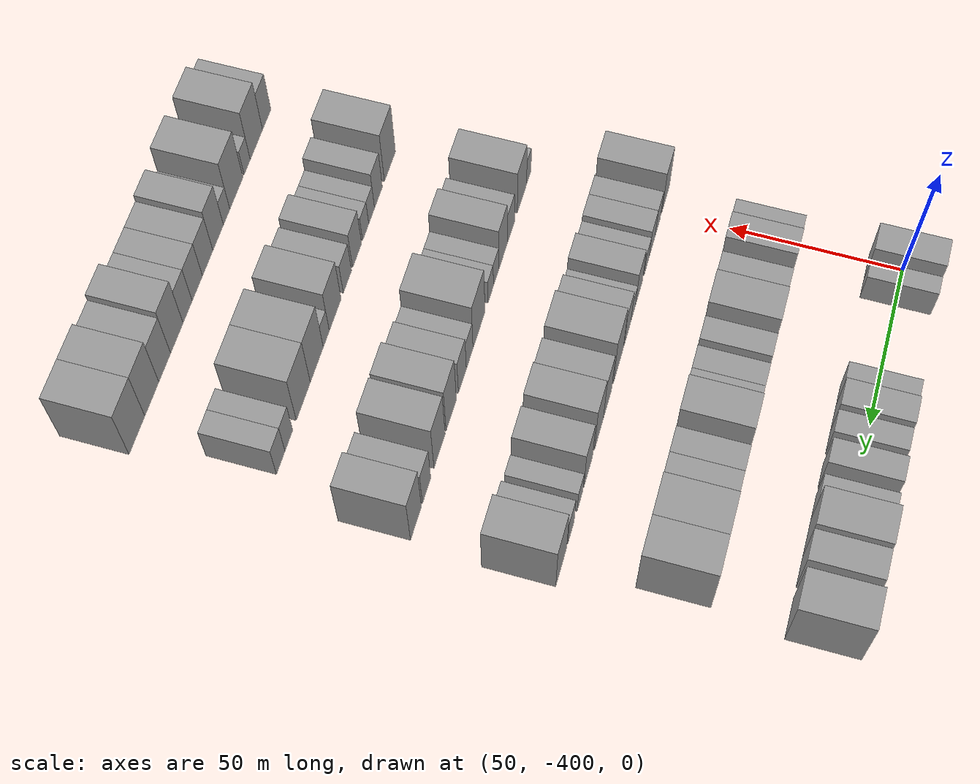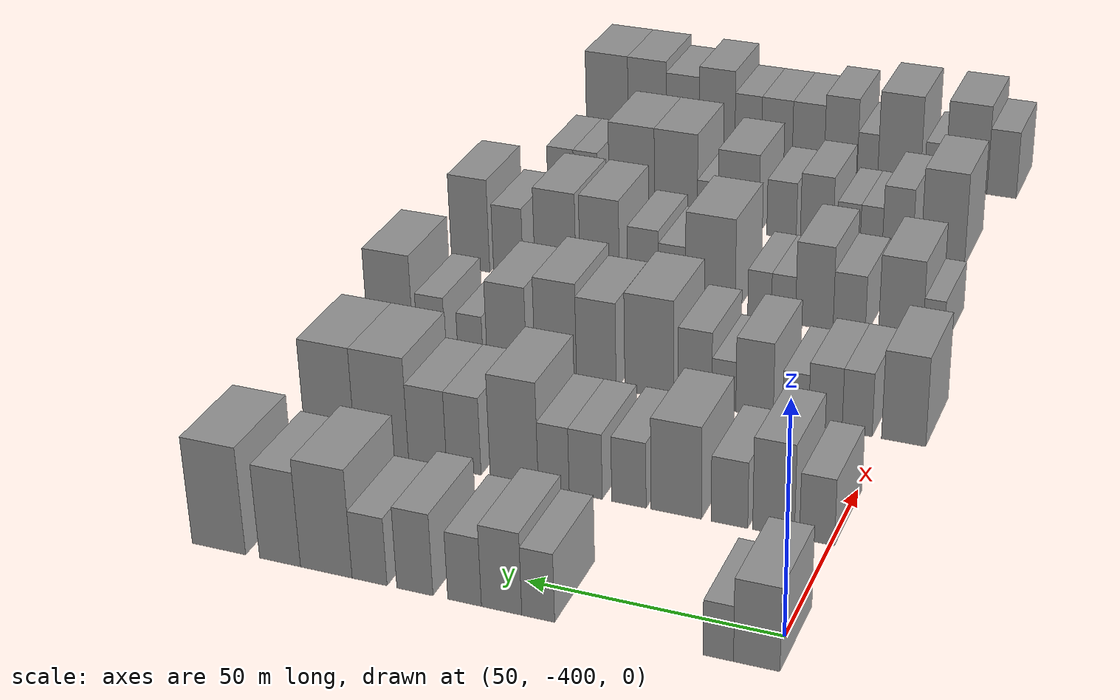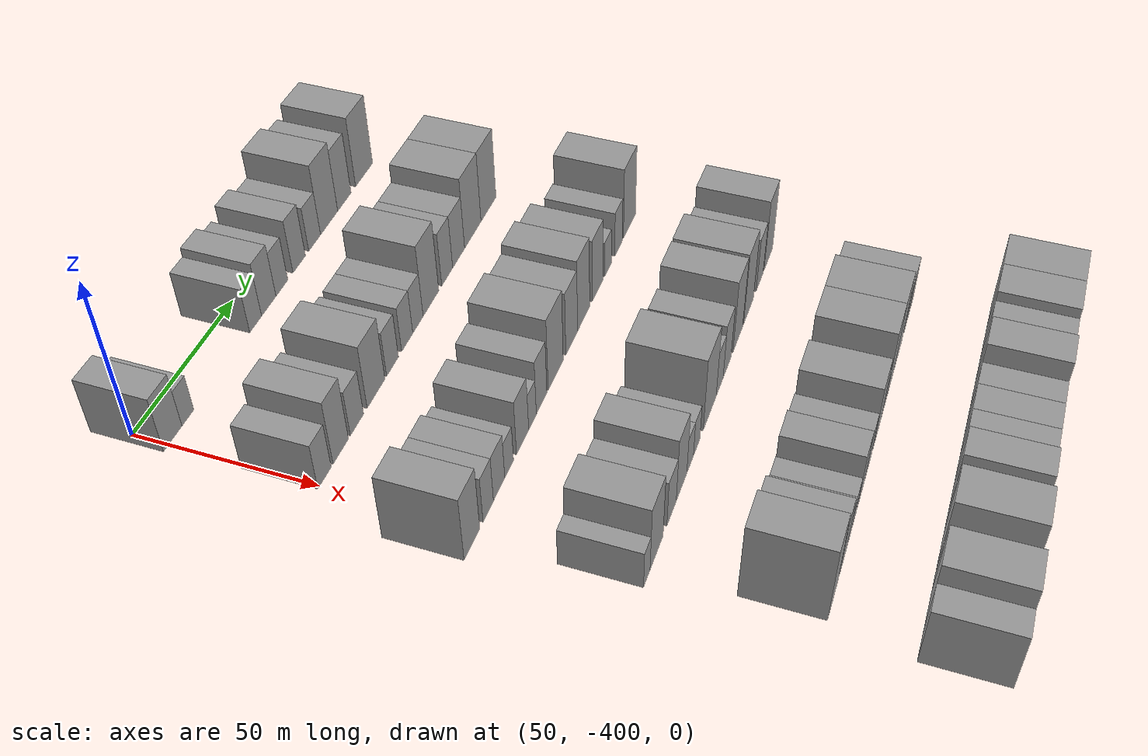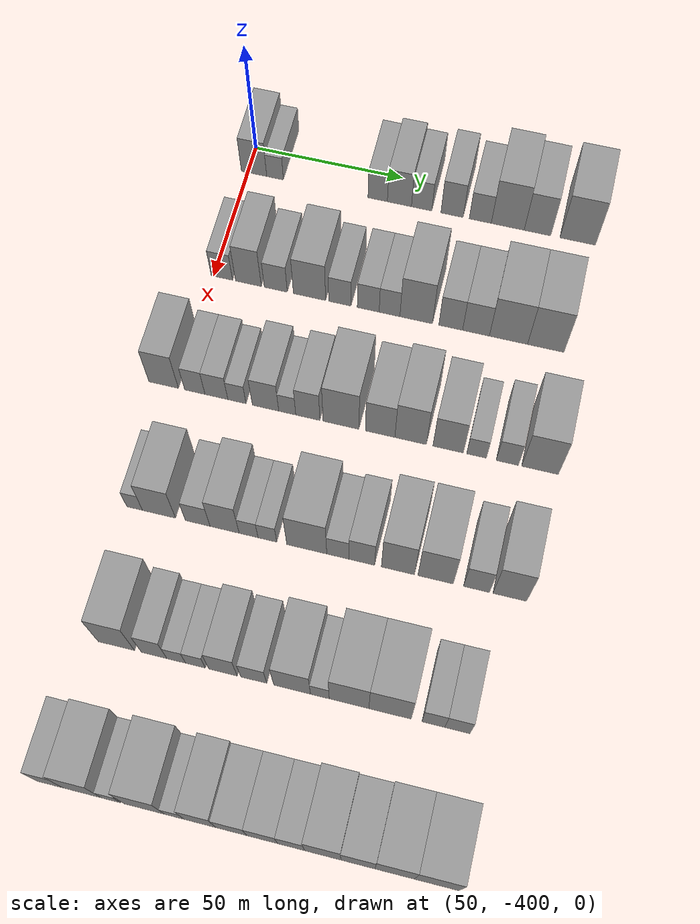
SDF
<sdf version="1.6">
 <world name="default">
  <model name="building_26">
   <static>1</static>
   <pose>50.0000 -397.8932 0 0.000000 0.000000 0.000000</pose>
   <link name="link">
    <pose>0 0 9.00 0 0 0</pose>
    <collision name="collision"><geometry><box><size>20.0000 8.5868 18.0000</size></box></geometry></collision>
    <visual name="visual">
     <cast_shadows>0</cast_shadows>
     <geometry><box><size>20.0000 8.5868 18.0000</size></box></geometry>
     <material>
      <script>
       <uri>model://grey_wall/materials/scripts</uri>
       <uri>model://grey_wall/materials/textures</uri>
       <name>vrc/grey_wall</name>
      </script>
     </material>
    </visual>
   </link>
  </model>
  <model name="building_27">
   <static>1</static>
   <pose>50.0000 -390.7681 0 0.000000 0.000000 0.000000</pose>
   <link name="link">
    <pose>0 0 6.00 0 0 0</pose>
    <collision name="collision"><geometry><box><size>20.0000 5.6634 12.0000</size></box></geometry></collision>
    <visual name="visual">
     <cast_shadows>0</cast_shadows>
     <geometry><box><size>20.0000 5.6634 12.0000</size></box></geometry>
     <material>
      <script>
       <uri>model://grey_wall/materials/scripts</uri>
       <uri>model://grey_wall/materials/textures</uri>
       <name>vrc/grey_wall</name>
      </script>
     </material>
    </visual>
   </link>
  </model>
  <model name="building_28">
   <static>1</static>
   <pose>50.0000 -356.2573 0 0.000000 0.000000 0.000000</pose>
   <link name="link">
    <pose>0 0 7.50 0 0 0</pose>
    <collision name="collision"><geometry><box><size>20.0000 6.4528 15.0000</size></box></geometry></collision>
    <visual name="visual">
     <cast_shadows>0</cast_shadows>
     <geometry><box><size>20.0000 6.4528 15.0000</size></box></geometry>
     <material>
      <script>
       <uri>model://grey_wall/materials/scripts</uri>
       <uri>model://grey_wall/materials/textures</uri>
       <name>vrc/grey_wall</name>
      </script>
     </material>
    </visual>
   </link>
  </model>
  <model name="building_29">
   <static>1</static>
   <pose>50.0000 -349.0196 0 0.000000 0.000000 0.000000</pose>
   <link name="link">
    <pose>0 0 9.00 0 0 0</pose>
    <collision name="collision"><geometry><box><size>20.0000 8.0226 18.0000</size></box></geometry></collision>
    <visual name="visual">
     <cast_shadows>0</cast_shadows>
     <geometry><box><size>20.0000 8.0226 18.0000</size></box></geometry>
     <material>
      <script>
       <uri>model://grey_wall/materials/scripts</uri>
       <uri>model://grey_wall/materials/textures</uri>
       <name>vrc/grey_wall</name>
      </script>
     </material>
    </visual>
   </link>
  </model>
  <model name="building_30">
   <static>1</static>
   <pose>50.0000 -341.6316 0 0.000000 0.000000 0.000000</pose>
   <link name="link">
    <pose>0 0 7.50 0 0 0</pose>
    <collision name="collision"><geometry><box><size>20.0000 6.7535 15.0000</size></box></geometry></collision>
    <visual name="visual">
     <cast_shadows>0</cast_shadows>
     <geometry><box><size>20.0000 6.7535 15.0000</size></box></geometry>
     <material>
      <script>
       <uri>model://grey_wall/materials/scripts</uri>
       <uri>model://grey_wall/materials/textures</uri>
       <name>vrc/grey_wall</name>
      </script>
     </material>
    </visual>
   </link>
  </model>
  <model name="building_31">
   <static>1</static>
   <pose>50.0000 -331.5749 0 0.000000 0.000000 0.000000</pose>
   <link name="link">
    <pose>0 0 9.00 0 0 0</pose>
    <collision name="collision"><geometry><box><size>20.0000 7.3599 18.0000</size></box></geometry></collision>
    <visual name="visual">
     <cast_shadows>0</cast_shadows>
     <geometry><box><size>20.0000 7.3599 18.0000</size></box></geometry>
     <material>
      <script>
       <uri>model://grey_wall/materials/scripts</uri>
       <uri>model://grey_wall/materials/textures</uri>
       <name>vrc/grey_wall</name>
      </script>
     </material>
    </visual>
   </link>
  </model>
  <model name="building_32">
   <static>1</static>
   <pose>50.0000 -322.2869 0 0.000000 0.000000 0.000000</pose>
   <link name="link">
    <pose>0 0 7.50 0 0 0</pose>
    <collision name="collision"><geometry><box><size>20.0000 7.2160 15.0000</size></box></geometry></collision>
    <visual name="visual">
     <cast_shadows>0</cast_shadows>
     <geometry><box><size>20.0000 7.2160 15.0000</size></box></geometry>
     <material>
      <script>
       <uri>model://grey_wall/materials/scripts</uri>
       <uri>model://grey_wall/materials/textures</uri>
       <name>vrc/grey_wall</name>
      </script>
     </material>
    </visual>
   </link>
  </model>
  <model name="building_33">
   <static>1</static>
   <pose>50.0000 -313.2828 0 0.000000 0.000000 0.000000</pose>
   <link name="link">
    <pose>0 0 12.00 0 0 0</pose>
    <collision name="collision"><geometry><box><size>20.0000 10.7922 24.0000</size></box></geometry></collision>
    <visual name="visual">
     <cast_shadows>0</cast_shadows>
     <geometry><box><size>20.0000 10.7922 24.0000</size></box></geometry>
     <material>
      <script>
       <uri>model://grey_wall/materials/scripts</uri>
       <uri>model://grey_wall/materials/textures</uri>
       <name>vrc/grey_wall</name>
      </script>
     </material>
    </visual>
   </link>
  </model>
  <model name="building_34">
   <static>1</static>
   <pose>50.0000 -303.5560 0 0.000000 0.000000 0.000000</pose>
   <link name="link">
    <pose>0 0 10.50 0 0 0</pose>
    <collision name="collision"><geometry><box><size>20.0000 8.6615 21.0000</size></box></geometry></collision>
    <visual name="visual">
     <cast_shadows>0</cast_shadows>
     <geometry><box><size>20.0000 8.6615 21.0000</size></box></geometry>
     <material>
      <script>
       <uri>model://grey_wall/materials/scripts</uri>
       <uri>model://grey_wall/materials/textures</uri>
       <name>vrc/grey_wall</name>
      </script>
     </material>
    </visual>
   </link>
  </model>
  <model name="building_35">
   <static>1</static>
   <pose>50.0000 -290.4824 0 0.000000 0.000000 0.000000</pose>
   <link name="link">
    <pose>0 0 12.00 0 0 0</pose>
    <collision name="collision"><geometry><box><size>20.0000 11.4858 24.0000</size></box></geometry></collision>
    <visual name="visual">
     <cast_shadows>0</cast_shadows>
     <geometry><box><size>20.0000 11.4858 24.0000</size></box></geometry>
     <material>
      <script>
       <uri>model://grey_wall/materials/scripts</uri>
       <uri>model://grey_wall/materials/textures</uri>
       <name>vrc/grey_wall</name>
      </script>
     </material>
    </visual>
   </link>
  </model>
  <model name="building_151">
   <static>1</static>
   <pose>90.0000 -397.3552 0 0.000000 0.000000 0.000000</pose>
   <link name="link">
    <pose>0 0 7.50 0 0 0</pose>
    <collision name="collision"><geometry><box><size>20.0000 6.9954 15.0000</size></box></geometry></collision>
    <visual name="visual">
     <cast_shadows>0</cast_shadows>
     <geometry><box><size>20.0000 6.9954 15.0000</size></box></geometry>
     <material>
      <script>
       <uri>model://grey_wall/materials/scripts</uri>
       <uri>model://grey_wall/materials/textures</uri>
       <name>vrc/grey_wall</name>
      </script>
     </material>
    </visual>
   </link>
  </model>
  <model name="building_152">
   <static>1</static>
   <pose>90.0000 -388.6516 0 0.000000 0.000000 0.000000</pose>
   <link name="link">
    <pose>0 0 10.50 0 0 0</pose>
    <collision name="collision"><geometry><box><size>20.0000 8.4116 21.0000</size></box></geometry></collision>
    <visual name="visual">
     <cast_shadows>0</cast_shadows>
     <geometry><box><size>20.0000 8.4116 21.0000</size></box></geometry>
     <material>
      <script>
       <uri>model://grey_wall/materials/scripts</uri>
       <uri>model://grey_wall/materials/textures</uri>
       <name>vrc/grey_wall</name>
      </script>
     </material>
    </visual>
   </link>
  </model>
  <model name="building_153">
   <static>1</static>
   <pose>90.0000 -379.7166 0 0.000000 0.000000 0.000000</pose>
   <link name="link">
    <pose>0 0 7.50 0 0 0</pose>
    <collision name="collision"><geometry><box><size>20.0000 7.4585 15.0000</size></box></geometry></collision>
    <visual name="visual">
     <cast_shadows>0</cast_shadows>
     <geometry><box><size>20.0000 7.4585 15.0000</size></box></geometry>
     <material>
      <script>
       <uri>model://grey_wall/materials/scripts</uri>
       <uri>model://grey_wall/materials/textures</uri>
       <name>vrc/grey_wall</name>
      </script>
     </material>
    </visual>
   </link>
  </model>
  <model name="building_154">
   <static>1</static>
   <pose>90.0000 -368.7658 0 0.000000 0.000000 0.000000</pose>
   <link name="link">
    <pose>0 0 10.50 0 0 0</pose>
    <collision name="collision"><geometry><box><size>20.0000 10.4432 21.0000</size></box></geometry></collision>
    <visual name="visual">
     <cast_shadows>0</cast_shadows>
     <geometry><box><size>20.0000 10.4432 21.0000</size></box></geometry>
     <material>
      <script>
       <uri>model://grey_wall/materials/scripts</uri>
       <uri>model://grey_wall/materials/textures</uri>
       <name>vrc/grey_wall</name>
      </script>
     </material>
    </visual>
   </link>
  </model>
  <model name="building_155">
   <static>1</static>
   <pose>90.0000 -358.9441 0 0.000000 0.000000 0.000000</pose>
   <link name="link">
    <pose>0 0 7.50 0 0 0</pose>
    <collision name="collision"><geometry><box><size>20.0000 7.2001 15.0000</size></box></geometry></collision>
    <visual name="visual">
     <cast_shadows>0</cast_shadows>
     <geometry><box><size>20.0000 7.2001 15.0000</size></box></geometry>
     <material>
      <script>
       <uri>model://grey_wall/materials/scripts</uri>
       <uri>model://grey_wall/materials/textures</uri>
       <name>vrc/grey_wall</name>
      </script>
     </material>
    </visual>
   </link>
  </model>
  <model name="building_156">
   <static>1</static>
   <pose>90.0000 -349.8378 0 0.000000 0.000000 0.000000</pose>
   <link name="link">
    <pose>0 0 7.50 0 0 0</pose>
    <collision name="collision"><geometry><box><size>20.0000 7.0124 15.0000</size></box></geometry></collision>
    <visual name="visual">
     <cast_shadows>0</cast_shadows>
     <geometry><box><size>20.0000 7.0124 15.0000</size></box></geometry>
     <material>
      <script>
       <uri>model://grey_wall/materials/scripts</uri>
       <uri>model://grey_wall/materials/textures</uri>
       <name>vrc/grey_wall</name>
      </script>
     </material>
    </visual>
   </link>
  </model>
  <model name="building_157">
   <static>1</static>
   <pose>90.0000 -343.0130 0 0.000000 0.000000 0.000000</pose>
   <link name="link">
    <pose>0 0 7.50 0 0 0</pose>
    <collision name="collision"><geometry><box><size>20.0000 6.6372 15.0000</size></box></geometry></collision>
    <visual name="visual">
     <cast_shadows>0</cast_shadows>
     <geometry><box><size>20.0000 6.6372 15.0000</size></box></geometry>
     <material>
      <script>
       <uri>model://grey_wall/materials/scripts</uri>
       <uri>model://grey_wall/materials/textures</uri>
       <name>vrc/grey_wall</name>
      </script>
     </material>
    </visual>
   </link>
  </model>
  <model name="building_158">
   <static>1</static>
   <pose>90.0000 -334.4944 0 0.000000 0.000000 0.000000</pose>
   <link name="link">
    <pose>0 0 12.00 0 0 0</pose>
    <collision name="collision"><geometry><box><size>20.0000 10.4001 24.0000</size></box></geometry></collision>
    <visual name="visual">
     <cast_shadows>0</cast_shadows>
     <geometry><box><size>20.0000 10.4001 24.0000</size></box></geometry>
     <material>
      <script>
       <uri>model://grey_wall/materials/scripts</uri>
       <uri>model://grey_wall/materials/textures</uri>
       <name>vrc/grey_wall</name>
      </script>
     </material>
    </visual>
   </link>
  </model>
  <model name="building_159">
   <static>1</static>
   <pose>90.0000 -323.5174 0 0.000000 0.000000 0.000000</pose>
   <link name="link">
    <pose>0 0 9.00 0 0 0</pose>
    <collision name="collision"><geometry><box><size>20.0000 7.5537 18.0000</size></box></geometry></collision>
    <visual name="visual">
     <cast_shadows>0</cast_shadows>
     <geometry><box><size>20.0000 7.5537 18.0000</size></box></geometry>
     <material>
      <script>
       <uri>model://grey_wall/materials/scripts</uri>
       <uri>model://grey_wall/materials/textures</uri>
       <name>vrc/grey_wall</name>
      </script>
     </material>
    </visual>
   </link>
  </model>
  <model name="building_160">
   <static>1</static>
   <pose>90.0000 -315.5094 0 0.000000 0.000000 0.000000</pose>
   <link name="link">
    <pose>0 0 9.00 0 0 0</pose>
    <collision name="collision"><geometry><box><size>20.0000 8.4623 18.0000</size></box></geometry></collision>
    <visual name="visual">
     <cast_shadows>0</cast_shadows>
     <geometry><box><size>20.0000 8.4623 18.0000</size></box></geometry>
     <material>
      <script>
       <uri>model://grey_wall/materials/scripts</uri>
       <uri>model://grey_wall/materials/textures</uri>
       <name>vrc/grey_wall</name>
      </script>
     </material>
    </visual>
   </link>
  </model>
  <model name="building_161">
   <static>1</static>
   <pose>90.0000 -305.2793 0 0.000000 0.000000 0.000000</pose>
   <link name="link">
    <pose>0 0 12.00 0 0 0</pose>
    <collision name="collision"><geometry><box><size>20.0000 11.9980 24.0000</size></box></geometry></collision>
    <visual name="visual">
     <cast_shadows>0</cast_shadows>
     <geometry><box><size>20.0000 11.9980 24.0000</size></box></geometry>
     <material>
      <script>
       <uri>model://grey_wall/materials/scripts</uri>
       <uri>model://grey_wall/materials/textures</uri>
       <name>vrc/grey_wall</name>
      </script>
     </material>
    </visual>
   </link>
  </model>
  <model name="building_162">
   <static>1</static>
   <pose>90.0000 -293.5775 0 0.000000 0.000000 0.000000</pose>
   <link name="link">
    <pose>0 0 12.00 0 0 0</pose>
    <collision name="collision"><geometry><box><size>20.0000 11.4056 24.0000</size></box></geometry></collision>
    <visual name="visual">
     <cast_shadows>0</cast_shadows>
     <geometry><box><size>20.0000 11.4056 24.0000</size></box></geometry>
     <material>
      <script>
       <uri>model://grey_wall/materials/scripts</uri>
       <uri>model://grey_wall/materials/textures</uri>
       <name>vrc/grey_wall</name>
      </script>
     </material>
    </visual>
   </link>
  </model>
  <model name="building_283">
   <static>1</static>
   <pose>130.0000 -404.2687 0 0.000000 0.000000 0.000000</pose>
   <link name="link">
    <pose>0 0 10.50 0 0 0</pose>
    <collision name="collision"><geometry><box><size>20.0000 9.3541 21.0000</size></box></geometry></collision>
    <visual name="visual">
     <cast_shadows>0</cast_shadows>
     <geometry><box><size>20.0000 9.3541 21.0000</size></box></geometry>
     <material>
      <script>
       <uri>model://grey_wall/materials/scripts</uri>
       <uri>model://grey_wall/materials/textures</uri>
       <name>vrc/grey_wall</name>
      </script>
     </material>
    </visual>
   </link>
  </model>
  <model name="building_284">
   <static>1</static>
   <pose>130.0000 -394.3772 0 0.000000 0.000000 0.000000</pose>
   <link name="link">
    <pose>0 0 7.50 0 0 0</pose>
    <collision name="collision"><geometry><box><size>20.0000 6.4288 15.0000</size></box></geometry></collision>
    <visual name="visual">
     <cast_shadows>0</cast_shadows>
     <geometry><box><size>20.0000 6.4288 15.0000</size></box></geometry>
     <material>
      <script>
       <uri>model://grey_wall/materials/scripts</uri>
       <uri>model://grey_wall/materials/textures</uri>
       <name>vrc/grey_wall</name>
      </script>
     </material>
    </visual>
   </link>
  </model>
  <model name="building_285">
   <static>1</static>
   <pose>130.0000 -387.5535 0 0.000000 0.000000 0.000000</pose>
   <link name="link">
    <pose>0 0 7.50 0 0 0</pose>
    <collision name="collision"><geometry><box><size>20.0000 7.2187 15.0000</size></box></geometry></collision>
    <visual name="visual">
     <cast_shadows>0</cast_shadows>
     <geometry><box><size>20.0000 7.2187 15.0000</size></box></geometry>
     <material>
      <script>
       <uri>model://grey_wall/materials/scripts</uri>
       <uri>model://grey_wall/materials/textures</uri>
       <name>vrc/grey_wall</name>
      </script>
     </material>
    </visual>
   </link>
  </model>
  <model name="building_286">
   <static>1</static>
   <pose>130.0000 -381.0975 0 0.000000 0.000000 0.000000</pose>
   <link name="link">
    <pose>0 0 6.00 0 0 0</pose>
    <collision name="collision"><geometry><box><size>20.0000 5.6932 12.0000</size></box></geometry></collision>
    <visual name="visual">
     <cast_shadows>0</cast_shadows>
     <geometry><box><size>20.0000 5.6932 12.0000</size></box></geometry>
     <material>
      <script>
       <uri>model://grey_wall/materials/scripts</uri>
       <uri>model://grey_wall/materials/textures</uri>
       <name>vrc/grey_wall</name>
      </script>
     </material>
    </visual>
   </link>
  </model>
  <model name="building_287">
   <static>1</static>
   <pose>130.0000 -372.1316 0 0.000000 0.000000 0.000000</pose>
   <link name="link">
    <pose>0 0 9.00 0 0 0</pose>
    <collision name="collision"><geometry><box><size>20.0000 8.2386 18.0000</size></box></geometry></collision>
    <visual name="visual">
     <cast_shadows>0</cast_shadows>
     <geometry><box><size>20.0000 8.2386 18.0000</size></box></geometry>
     <material>
      <script>
       <uri>model://grey_wall/materials/scripts</uri>
       <uri>model://grey_wall/materials/textures</uri>
       <name>vrc/grey_wall</name>
      </script>
     </material>
    </visual>
   </link>
  </model>
  <model name="building_288">
   <static>1</static>
   <pose>130.0000 -365.3599 0 0.000000 0.000000 0.000000</pose>
   <link name="link">
    <pose>0 0 6.00 0 0 0</pose>
    <collision name="collision"><geometry><box><size>20.0000 5.3048 12.0000</size></box></geometry></collision>
    <visual name="visual">
     <cast_shadows>0</cast_shadows>
     <geometry><box><size>20.0000 5.3048 12.0000</size></box></geometry>
     <material>
      <script>
       <uri>model://grey_wall/materials/scripts</uri>
       <uri>model://grey_wall/materials/textures</uri>
       <name>vrc/grey_wall</name>
      </script>
     </material>
    </visual>
   </link>
  </model>
  <model name="building_289">
   <static>1</static>
   <pose>130.0000 -358.9534 0 0.000000 0.000000 0.000000</pose>
   <link name="link">
    <pose>0 0 9.00 0 0 0</pose>
    <collision name="collision"><geometry><box><size>20.0000 7.5081 18.0000</size></box></geometry></collision>
    <visual name="visual">
     <cast_shadows>0</cast_shadows>
     <geometry><box><size>20.0000 7.5081 18.0000</size></box></geometry>
     <material>
      <script>
       <uri>model://grey_wall/materials/scripts</uri>
       <uri>model://grey_wall/materials/textures</uri>
       <name>vrc/grey_wall</name>
      </script>
     </material>
    </visual>
   </link>
  </model>
  <model name="building_290">
   <static>1</static>
   <pose>130.0000 -348.6659 0 0.000000 0.000000 0.000000</pose>
   <link name="link">
    <pose>0 0 12.00 0 0 0</pose>
    <collision name="collision"><geometry><box><size>20.0000 11.0669 24.0000</size></box></geometry></collision>
    <visual name="visual">
     <cast_shadows>0</cast_shadows>
     <geometry><box><size>20.0000 11.0669 24.0000</size></box></geometry>
     <material>
      <script>
       <uri>model://grey_wall/materials/scripts</uri>
       <uri>model://grey_wall/materials/textures</uri>
       <name>vrc/grey_wall</name>
      </script>
     </material>
    </visual>
   </link>
  </model>
  <model name="building_291">
   <static>1</static>
   <pose>130.0000 -336.5953 0 0.000000 0.000000 0.000000</pose>
   <link name="link">
    <pose>0 0 10.50 0 0 0</pose>
    <collision name="collision"><geometry><box><size>20.0000 9.0742 21.0000</size></box></geometry></collision>
    <visual name="visual">
     <cast_shadows>0</cast_shadows>
     <geometry><box><size>20.0000 9.0742 21.0000</size></box></geometry>
     <material>
      <script>
       <uri>model://grey_wall/materials/scripts</uri>
       <uri>model://grey_wall/materials/textures</uri>
       <name>vrc/grey_wall</name>
      </script>
     </material>
    </visual>
   </link>
  </model>
  <model name="building_292">
   <static>1</static>
   <pose>130.0000 -327.2388 0 0.000000 0.000000 0.000000</pose>
   <link name="link">
    <pose>0 0 12.00 0 0 0</pose>
    <collision name="collision"><geometry><box><size>20.0000 9.6388 24.0000</size></box></geometry></collision>
    <visual name="visual">
     <cast_shadows>0</cast_shadows>
     <geometry><box><size>20.0000 9.6388 24.0000</size></box></geometry>
     <material>
      <script>
       <uri>model://grey_wall/materials/scripts</uri>
       <uri>model://grey_wall/materials/textures</uri>
       <name>vrc/grey_wall</name>
      </script>
     </material>
    </visual>
   </link>
  </model>
  <model name="building_293">
   <static>1</static>
   <pose>130.0000 -315.7831 0 0.000000 0.000000 0.000000</pose>
   <link name="link">
    <pose>0 0 10.50 0 0 0</pose>
    <collision name="collision"><geometry><box><size>20.0000 9.2727 21.0000</size></box></geometry></collision>
    <visual name="visual">
     <cast_shadows>0</cast_shadows>
     <geometry><box><size>20.0000 9.2727 21.0000</size></box></geometry>
     <material>
      <script>
       <uri>model://grey_wall/materials/scripts</uri>
       <uri>model://grey_wall/materials/textures</uri>
       <name>vrc/grey_wall</name>
      </script>
     </material>
    </visual>
   </link>
  </model>
  <model name="building_294">
   <static>1</static>
   <pose>130.0000 -307.1684 0 0.000000 0.000000 0.000000</pose>
   <link name="link">
    <pose>0 0 6.00 0 0 0</pose>
    <collision name="collision"><geometry><box><size>20.0000 5.9567 12.0000</size></box></geometry></collision>
    <visual name="visual">
     <cast_shadows>0</cast_shadows>
     <geometry><box><size>20.0000 5.9567 12.0000</size></box></geometry>
     <material>
      <script>
       <uri>model://grey_wall/materials/scripts</uri>
       <uri>model://grey_wall/materials/textures</uri>
       <name>vrc/grey_wall</name>
      </script>
     </material>
    </visual>
   </link>
  </model>
  <model name="building_295">
   <static>1</static>
   <pose>130.0000 -297.8545 0 0.000000 0.000000 0.000000</pose>
   <link name="link">
    <pose>0 0 7.50 0 0 0</pose>
    <collision name="collision"><geometry><box><size>20.0000 6.6711 15.0000</size></box></geometry></collision>
    <visual name="visual">
     <cast_shadows>0</cast_shadows>
     <geometry><box><size>20.0000 6.6711 15.0000</size></box></geometry>
     <material>
      <script>
       <uri>model://grey_wall/materials/scripts</uri>
       <uri>model://grey_wall/materials/textures</uri>
       <name>vrc/grey_wall</name>
      </script>
     </material>
    </visual>
   </link>
  </model>
  <model name="building_296">
   <static>1</static>
   <pose>130.0000 -288.0106 0 0.000000 0.000000 0.000000</pose>
   <link name="link">
    <pose>0 0 12.00 0 0 0</pose>
    <collision name="collision"><geometry><box><size>20.0000 11.0166 24.0000</size></box></geometry></collision>
    <visual name="visual">
     <cast_shadows>0</cast_shadows>
     <geometry><box><size>20.0000 11.0166 24.0000</size></box></geometry>
     <material>
      <script>
       <uri>model://grey_wall/materials/scripts</uri>
       <uri>model://grey_wall/materials/textures</uri>
       <name>vrc/grey_wall</name>
      </script>
     </material>
    </visual>
   </link>
  </model>
  <model name="building_424">
   <static>1</static>
   <pose>170.0000 -400.8075 0 0.000000 0.000000 0.000000</pose>
   <link name="link">
    <pose>0 0 6.00 0 0 0</pose>
    <collision name="collision"><geometry><box><size>20.0000 4.8228 12.0000</size></box></geometry></collision>
    <visual name="visual">
     <cast_shadows>0</cast_shadows>
     <geometry><box><size>20.0000 4.8228 12.0000</size></box></geometry>
     <material>
      <script>
       <uri>model://grey_wall/materials/scripts</uri>
       <uri>model://grey_wall/materials/textures</uri>
       <name>vrc/grey_wall</name>
      </script>
     </material>
    </visual>
   </link>
  </model>
  <model name="building_425">
   <static>1</static>
   <pose>170.0000 -393.3749 0 0.000000 0.000000 0.000000</pose>
   <link name="link">
    <pose>0 0 10.50 0 0 0</pose>
    <collision name="collision"><geometry><box><size>20.0000 10.0425 21.0000</size></box></geometry></collision>
    <visual name="visual">
     <cast_shadows>0</cast_shadows>
     <geometry><box><size>20.0000 10.0425 21.0000</size></box></geometry>
     <material>
      <script>
       <uri>model://grey_wall/materials/scripts</uri>
       <uri>model://grey_wall/materials/textures</uri>
       <name>vrc/grey_wall</name>
      </script>
     </material>
    </visual>
   </link>
  </model>
  <model name="building_426">
   <static>1</static>
   <pose>170.0000 -381.6269 0 0.000000 0.000000 0.000000</pose>
   <link name="link">
    <pose>0 0 7.50 0 0 0</pose>
    <collision name="collision"><geometry><box><size>20.0000 7.4536 15.0000</size></box></geometry></collision>
    <visual name="visual">
     <cast_shadows>0</cast_shadows>
     <geometry><box><size>20.0000 7.4536 15.0000</size></box></geometry>
     <material>
      <script>
       <uri>model://grey_wall/materials/scripts</uri>
       <uri>model://grey_wall/materials/textures</uri>
       <name>vrc/grey_wall</name>
      </script>
     </material>
    </visual>
   </link>
  </model>
  <model name="building_427">
   <static>1</static>
   <pose>170.0000 -373.5046 0 0.000000 0.000000 0.000000</pose>
   <link name="link">
    <pose>0 0 10.50 0 0 0</pose>
    <collision name="collision"><geometry><box><size>20.0000 8.7910 21.0000</size></box></geometry></collision>
    <visual name="visual">
     <cast_shadows>0</cast_shadows>
     <geometry><box><size>20.0000 8.7910 21.0000</size></box></geometry>
     <material>
      <script>
       <uri>model://grey_wall/materials/scripts</uri>
       <uri>model://grey_wall/materials/textures</uri>
       <name>vrc/grey_wall</name>
      </script>
     </material>
    </visual>
   </link>
  </model>
  <model name="building_428">
   <static>1</static>
   <pose>170.0000 -366.2763 0 0.000000 0.000000 0.000000</pose>
   <link name="link">
    <pose>0 0 6.00 0 0 0</pose>
    <collision name="collision"><geometry><box><size>20.0000 5.6657 12.0000</size></box></geometry></collision>
    <visual name="visual">
     <cast_shadows>0</cast_shadows>
     <geometry><box><size>20.0000 5.6657 12.0000</size></box></geometry>
     <material>
      <script>
       <uri>model://grey_wall/materials/scripts</uri>
       <uri>model://grey_wall/materials/textures</uri>
       <name>vrc/grey_wall</name>
      </script>
     </material>
    </visual>
   </link>
  </model>
  <model name="building_429">
   <static>1</static>
   <pose>170.0000 -360.6447 0 0.000000 0.000000 0.000000</pose>
   <link name="link">
    <pose>0 0 6.00 0 0 0</pose>
    <collision name="collision"><geometry><box><size>20.0000 5.5974 12.0000</size></box></geometry></collision>
    <visual name="visual">
     <cast_shadows>0</cast_shadows>
     <geometry><box><size>20.0000 5.5974 12.0000</size></box></geometry>
     <material>
      <script>
       <uri>model://grey_wall/materials/scripts</uri>
       <uri>model://grey_wall/materials/textures</uri>
       <name>vrc/grey_wall</name>
      </script>
     </material>
    </visual>
   </link>
  </model>
  <model name="building_430">
   <static>1</static>
   <pose>170.0000 -348.9025 0 0.000000 0.000000 0.000000</pose>
   <link name="link">
    <pose>0 0 12.00 0 0 0</pose>
    <collision name="collision"><geometry><box><size>20.0000 11.8871 24.0000</size></box></geometry></collision>
    <visual name="visual">
     <cast_shadows>0</cast_shadows>
     <geometry><box><size>20.0000 11.8871 24.0000</size></box></geometry>
     <material>
      <script>
       <uri>model://grey_wall/materials/scripts</uri>
       <uri>model://grey_wall/materials/textures</uri>
       <name>vrc/grey_wall</name>
      </script>
     </material>
    </visual>
   </link>
  </model>
  <model name="building_431">
   <static>1</static>
   <pose>170.0000 -339.6867 0 0.000000 0.000000 0.000000</pose>
   <link name="link">
    <pose>0 0 7.50 0 0 0</pose>
    <collision name="collision"><geometry><box><size>20.0000 6.5444 15.0000</size></box></geometry></collision>
    <visual name="visual">
     <cast_shadows>0</cast_shadows>
     <geometry><box><size>20.0000 6.5444 15.0000</size></box></geometry>
     <material>
      <script>
       <uri>model://grey_wall/materials/scripts</uri>
       <uri>model://grey_wall/materials/textures</uri>
       <name>vrc/grey_wall</name>
      </script>
     </material>
    </visual>
   </link>
  </model>
  <model name="building_432">
   <static>1</static>
   <pose>170.0000 -332.6117 0 0.000000 0.000000 0.000000</pose>
   <link name="link">
    <pose>0 0 9.00 0 0 0</pose>
    <collision name="collision"><geometry><box><size>20.0000 7.6057 18.0000</size></box></geometry></collision>
    <visual name="visual">
     <cast_shadows>0</cast_shadows>
     <geometry><box><size>20.0000 7.6057 18.0000</size></box></geometry>
     <material>
      <script>
       <uri>model://grey_wall/materials/scripts</uri>
       <uri>model://grey_wall/materials/textures</uri>
       <name>vrc/grey_wall</name>
      </script>
     </material>
    </visual>
   </link>
  </model>
  <model name="building_433">
   <static>1</static>
   <pose>170.0000 -321.9472 0 0.000000 0.000000 0.000000</pose>
   <link name="link">
    <pose>0 0 12.00 0 0 0</pose>
    <collision name="collision"><geometry><box><size>20.0000 9.7232 24.0000</size></box></geometry></collision>
    <visual name="visual">
     <cast_shadows>0</cast_shadows>
     <geometry><box><size>20.0000 9.7232 24.0000</size></box></geometry>
     <material>
      <script>
       <uri>model://grey_wall/materials/scripts</uri>
       <uri>model://grey_wall/materials/textures</uri>
       <name>vrc/grey_wall</name>
      </script>
     </material>
    </visual>
   </link>
  </model>
  <model name="building_434">
   <static>1</static>
   <pose>170.0000 -310.9219 0 0.000000 0.000000 0.000000</pose>
   <link name="link">
    <pose>0 0 12.00 0 0 0</pose>
    <collision name="collision"><geometry><box><size>20.0000 10.3274 24.0000</size></box></geometry></collision>
    <visual name="visual">
     <cast_shadows>0</cast_shadows>
     <geometry><box><size>20.0000 10.3274 24.0000</size></box></geometry>
     <material>
      <script>
       <uri>model://grey_wall/materials/scripts</uri>
       <uri>model://grey_wall/materials/textures</uri>
       <name>vrc/grey_wall</name>
      </script>
     </material>
    </visual>
   </link>
  </model>
  <model name="building_435">
   <static>1</static>
   <pose>170.0000 -298.9947 0 0.000000 0.000000 0.000000</pose>
   <link name="link">
    <pose>0 0 9.00 0 0 0</pose>
    <collision name="collision"><geometry><box><size>20.0000 7.5271 18.0000</size></box></geometry></collision>
    <visual name="visual">
     <cast_shadows>0</cast_shadows>
     <geometry><box><size>20.0000 7.5271 18.0000</size></box></geometry>
     <material>
      <script>
       <uri>model://grey_wall/materials/scripts</uri>
       <uri>model://grey_wall/materials/textures</uri>
       <name>vrc/grey_wall</name>
      </script>
     </material>
    </visual>
   </link>
  </model>
  <model name="building_436">
   <static>1</static>
   <pose>170.0000 -289.3646 0 0.000000 0.000000 0.000000</pose>
   <link name="link">
    <pose>0 0 12.00 0 0 0</pose>
    <collision name="collision"><geometry><box><size>20.0000 9.7332 24.0000</size></box></geometry></collision>
    <visual name="visual">
     <cast_shadows>0</cast_shadows>
     <geometry><box><size>20.0000 9.7332 24.0000</size></box></geometry>
     <material>
      <script>
       <uri>model://grey_wall/materials/scripts</uri>
       <uri>model://grey_wall/materials/textures</uri>
       <name>vrc/grey_wall</name>
      </script>
     </material>
    </visual>
   </link>
  </model>
  <model name="building_566">
   <static>1</static>
   <pose>210.0000 -393.4894 0 0.000000 0.000000 0.000000</pose>
   <link name="link">
    <pose>0 0 12.00 0 0 0</pose>
    <collision name="collision"><geometry><box><size>20.0000 10.6416 24.0000</size></box></geometry></collision>
    <visual name="visual">
     <cast_shadows>0</cast_shadows>
     <geometry><box><size>20.0000 10.6416 24.0000</size></box></geometry>
     <material>
      <script>
       <uri>model://grey_wall/materials/scripts</uri>
       <uri>model://grey_wall/materials/textures</uri>
       <name>vrc/grey_wall</name>
      </script>
     </material>
    </visual>
   </link>
  </model>
  <model name="building_567">
   <static>1</static>
   <pose>210.0000 -382.4591 0 0.000000 0.000000 0.000000</pose>
   <link name="link">
    <pose>0 0 9.00 0 0 0</pose>
    <collision name="collision"><geometry><box><size>20.0000 7.4192 18.0000</size></box></geometry></collision>
    <visual name="visual">
     <cast_shadows>0</cast_shadows>
     <geometry><box><size>20.0000 7.4192 18.0000</size></box></geometry>
     <material>
      <script>
       <uri>model://grey_wall/materials/scripts</uri>
       <uri>model://grey_wall/materials/textures</uri>
       <name>vrc/grey_wall</name>
      </script>
     </material>
    </visual>
   </link>
  </model>
  <model name="building_568">
   <static>1</static>
   <pose>210.0000 -376.0173 0 0.000000 0.000000 0.000000</pose>
   <link name="link">
    <pose>0 0 6.00 0 0 0</pose>
    <collision name="collision"><geometry><box><size>20.0000 5.4644 12.0000</size></box></geometry></collision>
    <visual name="visual">
     <cast_shadows>0</cast_shadows>
     <geometry><box><size>20.0000 5.4644 12.0000</size></box></geometry>
     <material>
      <script>
       <uri>model://grey_wall/materials/scripts</uri>
       <uri>model://grey_wall/materials/textures</uri>
       <name>vrc/grey_wall</name>
      </script>
     </material>
    </visual>
   </link>
  </model>
  <model name="building_569">
   <static>1</static>
   <pose>210.0000 -370.4178 0 0.000000 0.000000 0.000000</pose>
   <link name="link">
    <pose>0 0 6.00 0 0 0</pose>
    <collision name="collision"><geometry><box><size>20.0000 5.7346 12.0000</size></box></geometry></collision>
    <visual name="visual">
     <cast_shadows>0</cast_shadows>
     <geometry><box><size>20.0000 5.7346 12.0000</size></box></geometry>
     <material>
      <script>
       <uri>model://grey_wall/materials/scripts</uri>
       <uri>model://grey_wall/materials/textures</uri>
       <name>vrc/grey_wall</name>
      </script>
     </material>
    </visual>
   </link>
  </model>
  <model name="building_570">
   <static>1</static>
   <pose>210.0000 -362.4594 0 0.000000 0.000000 0.000000</pose>
   <link name="link">
    <pose>0 0 9.00 0 0 0</pose>
    <collision name="collision"><geometry><box><size>20.0000 8.1821 18.0000</size></box></geometry></collision>
    <visual name="visual">
     <cast_shadows>0</cast_shadows>
     <geometry><box><size>20.0000 8.1821 18.0000</size></box></geometry>
     <material>
      <script>
       <uri>model://grey_wall/materials/scripts</uri>
       <uri>model://grey_wall/materials/textures</uri>
       <name>vrc/grey_wall</name>
      </script>
     </material>
    </visual>
   </link>
  </model>
  <model name="building_571">
   <static>1</static>
   <pose>210.0000 -353.6397 0 0.000000 0.000000 0.000000</pose>
   <link name="link">
    <pose>0 0 7.50 0 0 0</pose>
    <collision name="collision"><geometry><box><size>20.0000 7.4573 15.0000</size></box></geometry></collision>
    <visual name="visual">
     <cast_shadows>0</cast_shadows>
     <geometry><box><size>20.0000 7.4573 15.0000</size></box></geometry>
     <material>
      <script>
       <uri>model://grey_wall/materials/scripts</uri>
       <uri>model://grey_wall/materials/textures</uri>
       <name>vrc/grey_wall</name>
      </script>
     </material>
    </visual>
   </link>
  </model>
  <model name="building_572">
   <static>1</static>
   <pose>210.0000 -342.6761 0 0.000000 0.000000 0.000000</pose>
   <link name="link">
    <pose>0 0 10.50 0 0 0</pose>
    <collision name="collision"><geometry><box><size>20.0000 10.4700 21.0000</size></box></geometry></collision>
    <visual name="visual">
     <cast_shadows>0</cast_shadows>
     <geometry><box><size>20.0000 10.4700 21.0000</size></box></geometry>
     <material>
      <script>
       <uri>model://grey_wall/materials/scripts</uri>
       <uri>model://grey_wall/materials/textures</uri>
       <name>vrc/grey_wall</name>
      </script>
     </material>
    </visual>
   </link>
  </model>
  <model name="building_573">
   <static>1</static>
   <pose>210.0000 -334.7771 0 0.000000 0.000000 0.000000</pose>
   <link name="link">
    <pose>0 0 6.00 0 0 0</pose>
    <collision name="collision"><geometry><box><size>20.0000 5.3280 12.0000</size></box></geometry></collision>
    <visual name="visual">
     <cast_shadows>0</cast_shadows>
     <geometry><box><size>20.0000 5.3280 12.0000</size></box></geometry>
     <material>
      <script>
       <uri>model://grey_wall/materials/scripts</uri>
       <uri>model://grey_wall/materials/textures</uri>
       <name>vrc/grey_wall</name>
      </script>
     </material>
    </visual>
   </link>
  </model>
  <model name="building_574">
   <static>1</static>
   <pose>210.0000 -326.5229 0 0.000000 0.000000 0.000000</pose>
   <link name="link">
    <pose>0 0 12.00 0 0 0</pose>
    <collision name="collision"><geometry><box><size>20.0000 11.1803 24.0000</size></box></geometry></collision>
    <visual name="visual">
     <cast_shadows>0</cast_shadows>
     <geometry><box><size>20.0000 11.1803 24.0000</size></box></geometry>
     <material>
      <script>
       <uri>model://grey_wall/materials/scripts</uri>
       <uri>model://grey_wall/materials/textures</uri>
       <name>vrc/grey_wall</name>
      </script>
     </material>
    </visual>
   </link>
  </model>
  <model name="building_575">
   <static>1</static>
   <pose>210.0000 -314.9759 0 0.000000 0.000000 0.000000</pose>
   <link name="link">
    <pose>0 0 12.00 0 0 0</pose>
    <collision name="collision"><geometry><box><size>20.0000 11.9138 24.0000</size></box></geometry></collision>
    <visual name="visual">
     <cast_shadows>0</cast_shadows>
     <geometry><box><size>20.0000 11.9138 24.0000</size></box></geometry>
     <material>
      <script>
       <uri>model://grey_wall/materials/scripts</uri>
       <uri>model://grey_wall/materials/textures</uri>
       <name>vrc/grey_wall</name>
      </script>
     </material>
    </visual>
   </link>
  </model>
  <model name="building_576">
   <static>1</static>
   <pose>210.0000 -302.8187 0 0.000000 0.000000 0.000000</pose>
   <link name="link">
    <pose>0 0 7.50 0 0 0</pose>
    <collision name="collision"><geometry><box><size>20.0000 6.4006 15.0000</size></box></geometry></collision>
    <visual name="visual">
     <cast_shadows>0</cast_shadows>
     <geometry><box><size>20.0000 6.4006 15.0000</size></box></geometry>
     <material>
      <script>
       <uri>model://grey_wall/materials/scripts</uri>
       <uri>model://grey_wall/materials/textures</uri>
       <name>vrc/grey_wall</name>
      </script>
     </material>
    </visual>
   </link>
  </model>
  <model name="building_577">
   <static>1</static>
   <pose>210.0000 -296.1233 0 0.000000 0.000000 0.000000</pose>
   <link name="link">
    <pose>0 0 7.50 0 0 0</pose>
    <collision name="collision"><geometry><box><size>20.0000 6.9902 15.0000</size></box></geometry></collision>
    <visual name="visual">
     <cast_shadows>0</cast_shadows>
     <geometry><box><size>20.0000 6.9902 15.0000</size></box></geometry>
     <material>
      <script>
       <uri>model://grey_wall/materials/scripts</uri>
       <uri>model://grey_wall/materials/textures</uri>
       <name>vrc/grey_wall</name>
      </script>
     </material>
    </visual>
   </link>
  </model>
  <model name="building_703">
   <static>1</static>
   <pose>250.0000 -399.1938 0 0.000000 0.000000 0.000000</pose>
   <link name="link">
    <pose>0 0 9.00 0 0 0</pose>
    <collision name="collision"><geometry><box><size>20.0000 7.4627 18.0000</size></box></geometry></collision>
    <visual name="visual">
     <cast_shadows>0</cast_shadows>
     <geometry><box><size>20.0000 7.4627 18.0000</size></box></geometry>
     <material>
      <script>
       <uri>model://grey_wall/materials/scripts</uri>
       <uri>model://grey_wall/materials/textures</uri>
       <name>vrc/grey_wall</name>
      </script>
     </material>
    </visual>
   </link>
  </model>
  <model name="building_704">
   <static>1</static>
   <pose>250.0000 -390.0488 0 0.000000 0.000000 0.000000</pose>
   <link name="link">
    <pose>0 0 12.00 0 0 0</pose>
    <collision name="collision"><geometry><box><size>20.0000 10.8272 24.0000</size></box></geometry></collision>
    <visual name="visual">
     <cast_shadows>0</cast_shadows>
     <geometry><box><size>20.0000 10.8272 24.0000</size></box></geometry>
     <material>
      <script>
       <uri>model://grey_wall/materials/scripts</uri>
       <uri>model://grey_wall/materials/textures</uri>
       <name>vrc/grey_wall</name>
      </script>
     </material>
    </visual>
   </link>
  </model>
  <model name="building_705">
   <static>1</static>
   <pose>250.0000 -381.9650 0 0.000000 0.000000 0.000000</pose>
   <link name="link">
    <pose>0 0 6.00 0 0 0</pose>
    <collision name="collision"><geometry><box><size>20.0000 5.3404 12.0000</size></box></geometry></collision>
    <visual name="visual">
     <cast_shadows>0</cast_shadows>
     <geometry><box><size>20.0000 5.3404 12.0000</size></box></geometry>
     <material>
      <script>
       <uri>model://grey_wall/materials/scripts</uri>
       <uri>model://grey_wall/materials/textures</uri>
       <name>vrc/grey_wall</name>
      </script>
     </material>
    </visual>
   </link>
  </model>
  <model name="building_706">
   <static>1</static>
   <pose>250.0000 -372.6955 0 0.000000 0.000000 0.000000</pose>
   <link name="link">
    <pose>0 0 12.00 0 0 0</pose>
    <collision name="collision"><geometry><box><size>20.0000 11.1986 24.0000</size></box></geometry></collision>
    <visual name="visual">
     <cast_shadows>0</cast_shadows>
     <geometry><box><size>20.0000 11.1986 24.0000</size></box></geometry>
     <material>
      <script>
       <uri>model://grey_wall/materials/scripts</uri>
       <uri>model://grey_wall/materials/textures</uri>
       <name>vrc/grey_wall</name>
      </script>
     </material>
    </visual>
   </link>
  </model>
  <model name="building_707">
   <static>1</static>
   <pose>250.0000 -364.3867 0 0.000000 0.000000 0.000000</pose>
   <link name="link">
    <pose>0 0 6.00 0 0 0</pose>
    <collision name="collision"><geometry><box><size>20.0000 5.4190 12.0000</size></box></geometry></collision>
    <visual name="visual">
     <cast_shadows>0</cast_shadows>
     <geometry><box><size>20.0000 5.4190 12.0000</size></box></geometry>
     <material>
      <script>
       <uri>model://grey_wall/materials/scripts</uri>
       <uri>model://grey_wall/materials/textures</uri>
       <name>vrc/grey_wall</name>
      </script>
     </material>
    </visual>
   </link>
  </model>
  <model name="building_708">
   <static>1</static>
   <pose>250.0000 -357.2833 0 0.000000 0.000000 0.000000</pose>
   <link name="link">
    <pose>0 0 10.50 0 0 0</pose>
    <collision name="collision"><geometry><box><size>20.0000 8.7877 21.0000</size></box></geometry></collision>
    <visual name="visual">
     <cast_shadows>0</cast_shadows>
     <geometry><box><size>20.0000 8.7877 21.0000</size></box></geometry>
     <material>
      <script>
       <uri>model://grey_wall/materials/scripts</uri>
       <uri>model://grey_wall/materials/textures</uri>
       <name>vrc/grey_wall</name>
      </script>
     </material>
    </visual>
   </link>
  </model>
  <model name="building_709">
   <static>1</static>
   <pose>250.0000 -348.5939 0 0.000000 0.000000 0.000000</pose>
   <link name="link">
    <pose>0 0 9.00 0 0 0</pose>
    <collision name="collision"><geometry><box><size>20.0000 8.5911 18.0000</size></box></geometry></collision>
    <visual name="visual">
     <cast_shadows>0</cast_shadows>
     <geometry><box><size>20.0000 8.5911 18.0000</size></box></geometry>
     <material>
      <script>
       <uri>model://grey_wall/materials/scripts</uri>
       <uri>model://grey_wall/materials/textures</uri>
       <name>vrc/grey_wall</name>
      </script>
     </material>
    </visual>
   </link>
  </model>
  <model name="building_710">
   <static>1</static>
   <pose>250.0000 -340.1311 0 0.000000 0.000000 0.000000</pose>
   <link name="link">
    <pose>0 0 9.00 0 0 0</pose>
    <collision name="collision"><geometry><box><size>20.0000 8.3346 18.0000</size></box></geometry></collision>
    <visual name="visual">
     <cast_shadows>0</cast_shadows>
     <geometry><box><size>20.0000 8.3346 18.0000</size></box></geometry>
     <material>
      <script>
       <uri>model://grey_wall/materials/scripts</uri>
       <uri>model://grey_wall/materials/textures</uri>
       <name>vrc/grey_wall</name>
      </script>
     </material>
    </visual>
   </link>
  </model>
  <model name="building_711">
   <static>1</static>
   <pose>250.0000 -332.3343 0 0.000000 0.000000 0.000000</pose>
   <link name="link">
    <pose>0 0 9.00 0 0 0</pose>
    <collision name="collision"><geometry><box><size>20.0000 7.2591 18.0000</size></box></geometry></collision>
    <visual name="visual">
     <cast_shadows>0</cast_shadows>
     <geometry><box><size>20.0000 7.2591 18.0000</size></box></geometry>
     <material>
      <script>
       <uri>model://grey_wall/materials/scripts</uri>
       <uri>model://grey_wall/materials/textures</uri>
       <name>vrc/grey_wall</name>
      </script>
     </material>
    </visual>
   </link>
  </model>
  <model name="building_712">
   <static>1</static>
   <pose>250.0000 -323.8097 0 0.000000 0.000000 0.000000</pose>
   <link name="link">
    <pose>0 0 12.00 0 0 0</pose>
    <collision name="collision"><geometry><box><size>20.0000 9.7901 24.0000</size></box></geometry></collision>
    <visual name="visual">
     <cast_shadows>0</cast_shadows>
     <geometry><box><size>20.0000 9.7901 24.0000</size></box></geometry>
     <material>
      <script>
       <uri>model://grey_wall/materials/scripts</uri>
       <uri>model://grey_wall/materials/textures</uri>
       <name>vrc/grey_wall</name>
      </script>
     </material>
    </visual>
   </link>
  </model>
  <model name="building_713">
   <static>1</static>
   <pose>250.0000 -314.3382 0 0.000000 0.000000 0.000000</pose>
   <link name="link">
    <pose>0 0 10.50 0 0 0</pose>
    <collision name="collision"><geometry><box><size>20.0000 9.1528 21.0000</size></box></geometry></collision>
    <visual name="visual">
     <cast_shadows>0</cast_shadows>
     <geometry><box><size>20.0000 9.1528 21.0000</size></box></geometry>
     <material>
      <script>
       <uri>model://grey_wall/materials/scripts</uri>
       <uri>model://grey_wall/materials/textures</uri>
       <name>vrc/grey_wall</name>
      </script>
     </material>
    </visual>
   </link>
  </model>
  <model name="building_714">
   <static>1</static>
   <pose>250.0000 -304.4407 0 0.000000 0.000000 0.000000</pose>
   <link name="link">
    <pose>0 0 12.00 0 0 0</pose>
    <collision name="collision"><geometry><box><size>20.0000 10.6423 24.0000</size></box></geometry></collision>
    <visual name="visual">
     <cast_shadows>0</cast_shadows>
     <geometry><box><size>20.0000 10.6423 24.0000</size></box></geometry>
     <material>
      <script>
       <uri>model://grey_wall/materials/scripts</uri>
       <uri>model://grey_wall/materials/textures</uri>
       <name>vrc/grey_wall</name>
      </script>
     </material>
    </visual>
   </link>
  </model>
  <model name="building_715">
   <static>1</static>
   <pose>250.0000 -293.2283 0 0.000000 0.000000 0.000000</pose>
   <link name="link">
    <pose>0 0 12.00 0 0 0</pose>
    <collision name="collision"><geometry><box><size>20.0000 11.7825 24.0000</size></box></geometry></collision>
    <visual name="visual">
     <cast_shadows>0</cast_shadows>
     <geometry><box><size>20.0000 11.7825 24.0000</size></box></geometry>
     <material>
      <script>
       <uri>model://grey_wall/materials/scripts</uri>
       <uri>model://grey_wall/materials/textures</uri>
       <name>vrc/grey_wall</name>
      </script>
     </material>
    </visual>
   </link>
  </model>
 </world>
</sdf>
